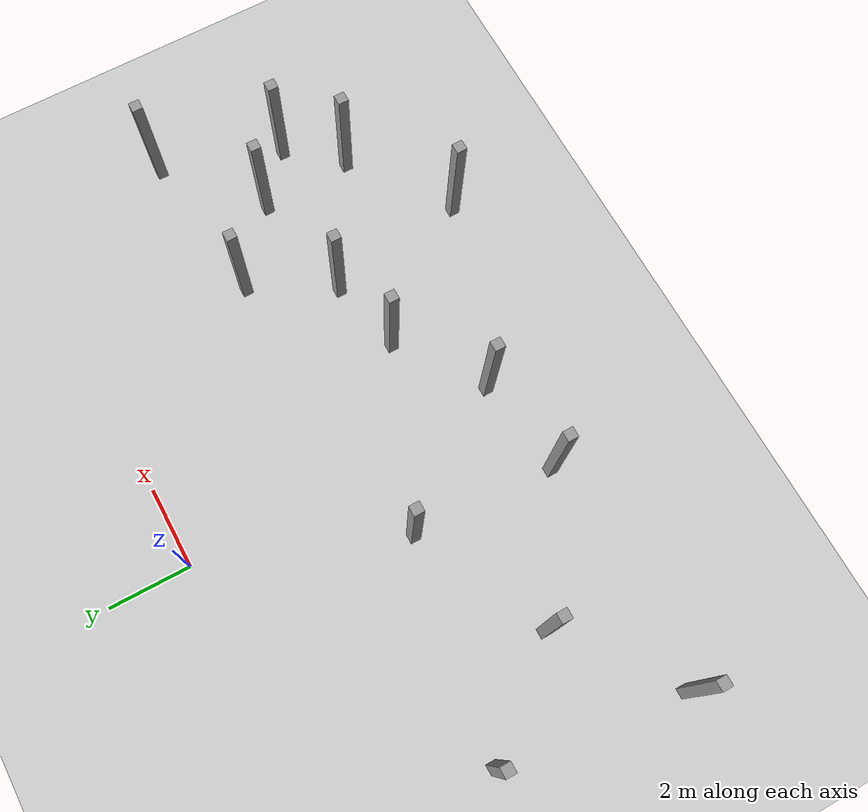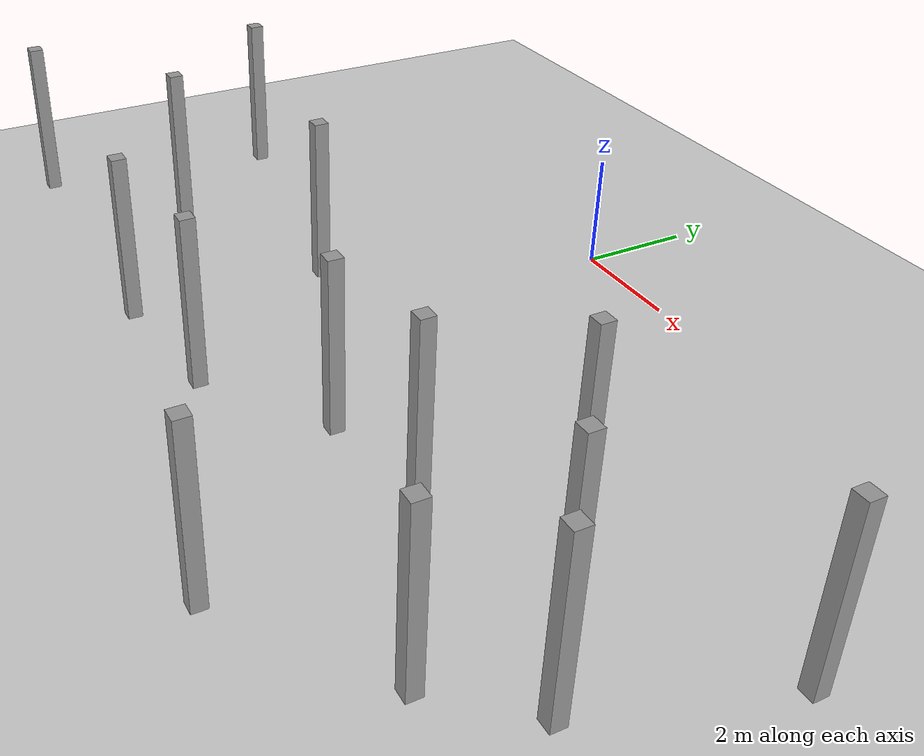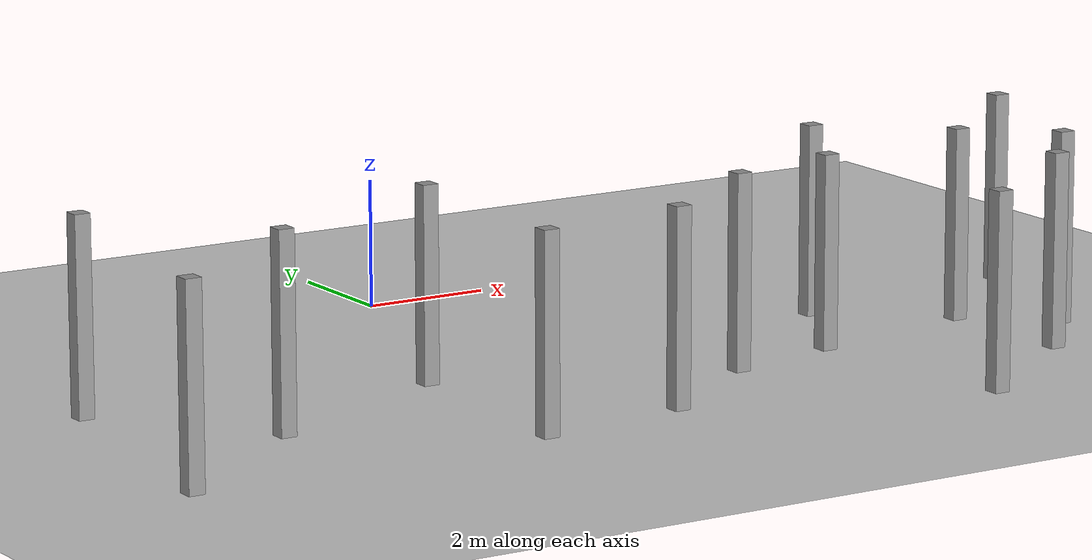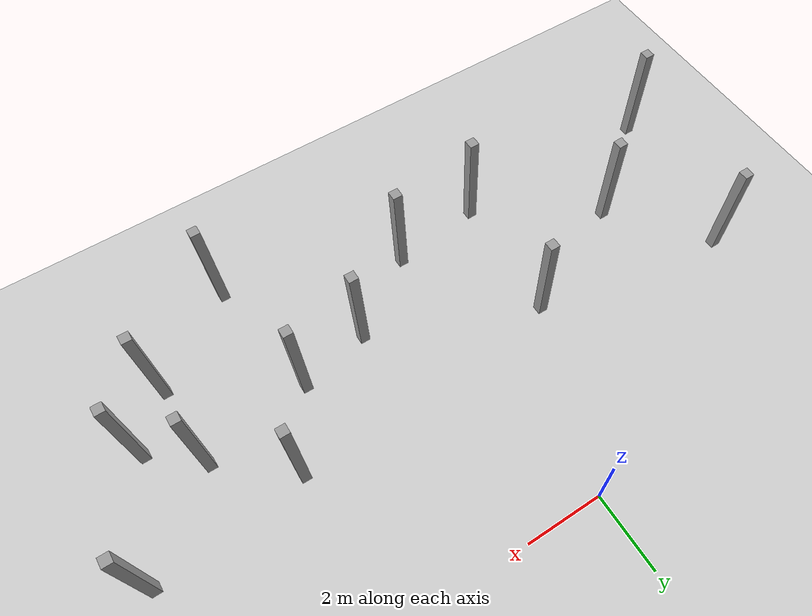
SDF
<sdf version="1.6">
 <world name="default">
  <model name="ground_plane">
   <static>1</static>
   <link name="link">
    <collision name="collision">
     <geometry><plane><normal>0 0 1</normal><size>100 100</size></plane></geometry>
     <surface><friction><ode><mu>100</mu><mu2>50</mu2></ode></friction></surface>
    </collision>
    <visual name="visual">
     <cast_shadows>0</cast_shadows>
     <geometry><plane><normal>0 0 1</normal><size>100 100</size></plane></geometry>
     <material>
      <script><uri>file://media/materials/scripts/gazebo.material</uri><name>Gazebo/Grey</name></script>
     </material>
    </visual>
   </link>
  </model>
  <model name="box_2_0">
   <link name="link">
    <pose>0 0 1 0 -0 0</pose>
    <inertial>
     <mass>1</mass>
     <inertia><ixx>5.16667</ixx><ixy>0</ixy><ixz>0</ixz><iyy>5.16667</iyy><iyz>0</iyz><izz>5.16667</izz></inertia>
     <pose>0 0 1 0 -0 0</pose>
    </inertial>
    <visual name="ModelPreview_4::link::visual_1">
     <geometry><box><size>0.25 0.25 3</size></box></geometry>
     <material>
      <script><name>Gazebo/Grey</name><uri>file://media/materials/scripts/gazebo.material</uri></script>
      <ambient>0.3 0.3 0.3 1</ambient>
      <diffuse>0.7 0.7 0.7 1</diffuse>
      <specular>0.01 0.01 0.01 1</specular>
      <emissive>0 0 0 1</emissive>
      <shader type="vertex"><normal_map>__default__</normal_map></shader>
     </material>
    </visual>
    <visual name="visual">
     <geometry><box><size>0.25 0.25 3</size></box></geometry>
     <material>
      <script><name>Gazebo/Grey</name><uri>file://media/materials/scripts/gazebo.material</uri></script>
      <ambient>0.3 0.3 0.3 1</ambient>
      <diffuse>0.7 0.7 0.7 1</diffuse>
      <specular>0.01 0.01 0.01 1</specular>
      <emissive>0 0 0 1</emissive>
      <shader type="vertex"><normal_map>__default__</normal_map></shader>
     </material>
    </visual>
    <collision name="collision">
     <geometry><box><size>0.25 0.25 3</size></box></geometry>
     <surface>
      <friction>
       <ode><mu>1</mu><mu2>1</mu2><fdir1>0 0 0</fdir1><slip1>0</slip1><slip2>0</slip2></ode>
       <torsional>
        <coefficient>1</coefficient>
        <patch_radius>0</patch_radius>
        <surface_radius>0</surface_radius>
        <use_patch_radius>1</use_patch_radius>
        <ode><slip>0</slip></ode>
       </torsional>
      </friction>
      <bounce><restitution_coefficient>0</restitution_coefficient><threshold>1e+06</threshold></bounce>
      <contact>
       <collide_without_contact>0</collide_without_contact>
       <collide_without_contact_bitmask>1</collide_without_contact_bitmask>
       <collide_bitmask>1</collide_bitmask>
       <ode>
        <soft_cfm>0</soft_cfm>
        <soft_erp>0.2</soft_erp>
        <kp>1e+13</kp>
        <kd>1</kd>
        <max_vel>0.01</max_vel>
        <min_depth>0</min_depth>
       </ode>
       <bullet>
        <split_impulse>1</split_impulse>
        <split_impulse_penetration_threshold>-0.01</split_impulse_penetration_threshold>
        <soft_cfm>0</soft_cfm>
        <soft_erp>0.2</soft_erp>
        <kp>1e+13</kp>
        <kd>1</kd>
       </bullet>
      </contact>
     </surface>
    </collision>
   </link>
   <static>0</static>
   <pose>-1.80227 -4.75191 0.49912 0 0 -0.000127</pose>
  </model>
  <model name="box_2_1">
   <link name="link">
    <pose>0 0 1 0 -0 0</pose>
    <inertial>
     <mass>1</mass>
     <inertia><ixx>5.16667</ixx><ixy>0</ixy><ixz>0</ixz><iyy>5.16667</iyy><iyz>0</iyz><izz>5.16667</izz></inertia>
     <pose>0 0 1 0 -0 0</pose>
    </inertial>
    <visual name="ModelPreview_4::link::visual_1">
     <geometry><box><size>0.25 0.25 3</size></box></geometry>
     <material>
      <script><name>Gazebo/Grey</name><uri>file://media/materials/scripts/gazebo.material</uri></script>
      <ambient>0.3 0.3 0.3 1</ambient>
      <diffuse>0.7 0.7 0.7 1</diffuse>
      <specular>0.01 0.01 0.01 1</specular>
      <emissive>0 0 0 1</emissive>
      <shader type="vertex"><normal_map>__default__</normal_map></shader>
     </material>
    </visual>
    <visual name="visual">
     <geometry><box><size>0.25 0.25 3</size></box></geometry>
     <material>
      <script><name>Gazebo/Grey</name><uri>file://media/materials/scripts/gazebo.material</uri></script>
      <ambient>0.3 0.3 0.3 1</ambient>
      <diffuse>0.7 0.7 0.7 1</diffuse>
      <specular>0.01 0.01 0.01 1</specular>
      <emissive>0 0 0 1</emissive>
      <shader type="vertex"><normal_map>__default__</normal_map></shader>
     </material>
    </visual>
    <collision name="collision">
     <geometry><box><size>0.25 0.25 3</size></box></geometry>
     <surface>
      <friction>
       <ode><mu>1</mu><mu2>1</mu2><fdir1>0 0 0</fdir1><slip1>0</slip1><slip2>0</slip2></ode>
       <torsional>
        <coefficient>1</coefficient>
        <patch_radius>0</patch_radius>
        <surface_radius>0</surface_radius>
        <use_patch_radius>1</use_patch_radius>
        <ode><slip>0</slip></ode>
       </torsional>
      </friction>
      <bounce><restitution_coefficient>0</restitution_coefficient><threshold>1e+06</threshold></bounce>
      <contact>
       <collide_without_contact>0</collide_without_contact>
       <collide_without_contact_bitmask>1</collide_without_contact_bitmask>
       <collide_bitmask>1</collide_bitmask>
       <ode>
        <soft_cfm>0</soft_cfm>
        <soft_erp>0.2</soft_erp>
        <kp>1e+13</kp>
        <kd>1</kd>
        <max_vel>0.01</max_vel>
        <min_depth>0</min_depth>
       </ode>
       <bullet>
        <split_impulse>1</split_impulse>
        <split_impulse_penetration_threshold>-0.01</split_impulse_penetration_threshold>
        <soft_cfm>0</soft_cfm>
        <soft_erp>0.2</soft_erp>
        <kp>1e+13</kp>
        <kd>1</kd>
       </bullet>
      </contact>
     </surface>
    </collision>
   </link>
   <static>0</static>
   <pose>4.35884 -6.08967 0.49912 0 0 -0.000185</pose>
  </model>
  <model name="box_2_2">
   <link name="link">
    <pose>0 0 1 0 -0 0</pose>
    <inertial>
     <mass>1</mass>
     <inertia><ixx>5.16667</ixx><ixy>0</ixy><ixz>0</ixz><iyy>5.16667</iyy><iyz>0</iyz><izz>5.16667</izz></inertia>
     <pose>0 0 1 0 -0 0</pose>
    </inertial>
    <visual name="ModelPreview_4::link::visual_1">
     <geometry><box><size>0.25 0.25 3</size></box></geometry>
     <material>
      <script><name>Gazebo/Grey</name><uri>file://media/materials/scripts/gazebo.material</uri></script>
      <ambient>0.3 0.3 0.3 1</ambient>
      <diffuse>0.7 0.7 0.7 1</diffuse>
      <specular>0.01 0.01 0.01 1</specular>
      <emissive>0 0 0 1</emissive>
      <shader type="vertex"><normal_map>__default__</normal_map></shader>
     </material>
    </visual>
    <visual name="visual">
     <geometry><box><size>0.25 0.25 3</size></box></geometry>
     <material>
      <script><name>Gazebo/Grey</name><uri>file://media/materials/scripts/gazebo.material</uri></script>
      <ambient>0.3 0.3 0.3 1</ambient>
      <diffuse>0.7 0.7 0.7 1</diffuse>
      <specular>0.01 0.01 0.01 1</specular>
      <emissive>0 0 0 1</emissive>
      <shader type="vertex"><normal_map>__default__</normal_map></shader>
     </material>
    </visual>
    <collision name="collision">
     <geometry><box><size>0.25 0.25 3</size></box></geometry>
     <surface>
      <friction>
       <ode><mu>1</mu><mu2>1</mu2><fdir1>0 0 0</fdir1><slip1>0</slip1><slip2>0</slip2></ode>
       <torsional>
        <coefficient>1</coefficient>
        <patch_radius>0</patch_radius>
        <surface_radius>0</surface_radius>
        <use_patch_radius>1</use_patch_radius>
        <ode><slip>0</slip></ode>
       </torsional>
      </friction>
      <bounce><restitution_coefficient>0</restitution_coefficient><threshold>1e+06</threshold></bounce>
      <contact>
       <collide_without_contact>0</collide_without_contact>
       <collide_without_contact_bitmask>1</collide_without_contact_bitmask>
       <collide_bitmask>1</collide_bitmask>
       <ode>
        <soft_cfm>0</soft_cfm>
        <soft_erp>0.2</soft_erp>
        <kp>1e+13</kp>
        <kd>1</kd>
        <max_vel>0.01</max_vel>
        <min_depth>0</min_depth>
       </ode>
       <bullet>
        <split_impulse>1</split_impulse>
        <split_impulse_penetration_threshold>-0.01</split_impulse_penetration_threshold>
        <soft_cfm>0</soft_cfm>
        <soft_erp>0.2</soft_erp>
        <kp>1e+13</kp>
        <kd>1</kd>
       </bullet>
      </contact>
     </surface>
    </collision>
   </link>
   <static>0</static>
   <pose>7.18467 -5.54174 0.49912 0 0 -0.000153</pose>
  </model>
  <model name="box_2_3">
   <link name="link">
    <pose>0 0 1 0 -0 0</pose>
    <inertial>
     <mass>1</mass>
     <inertia><ixx>5.16667</ixx><ixy>0</ixy><ixz>0</ixz><iyy>5.16667</iyy><iyz>0</iyz><izz>5.16667</izz></inertia>
     <pose>0 0 1 0 -0 0</pose>
    </inertial>
    <visual name="ModelPreview_4::link::visual_1">
     <geometry><box><size>0.25 0.25 3</size></box></geometry>
     <material>
      <script><name>Gazebo/Grey</name><uri>file://media/materials/scripts/gazebo.material</uri></script>
      <ambient>0.3 0.3 0.3 1</ambient>
      <diffuse>0.7 0.7 0.7 1</diffuse>
      <specular>0.01 0.01 0.01 1</specular>
      <emissive>0 0 0 1</emissive>
      <shader type="vertex"><normal_map>__default__</normal_map></shader>
     </material>
    </visual>
    <visual name="visual">
     <geometry><box><size>0.25 0.25 3</size></box></geometry>
     <material>
      <script><name>Gazebo/Grey</name><uri>file://media/materials/scripts/gazebo.material</uri></script>
      <ambient>0.3 0.3 0.3 1</ambient>
      <diffuse>0.7 0.7 0.7 1</diffuse>
      <specular>0.01 0.01 0.01 1</specular>
      <emissive>0 0 0 1</emissive>
      <shader type="vertex"><normal_map>__default__</normal_map></shader>
     </material>
    </visual>
    <collision name="collision">
     <geometry><box><size>0.25 0.25 3</size></box></geometry>
     <surface>
      <friction>
       <ode><mu>1</mu><mu2>1</mu2><fdir1>0 0 0</fdir1><slip1>0</slip1><slip2>0</slip2></ode>
       <torsional>
        <coefficient>1</coefficient>
        <patch_radius>0</patch_radius>
        <surface_radius>0</surface_radius>
        <use_patch_radius>1</use_patch_radius>
        <ode><slip>0</slip></ode>
       </torsional>
      </friction>
      <bounce><restitution_coefficient>0</restitution_coefficient><threshold>1e+06</threshold></bounce>
      <contact>
       <collide_without_contact>0</collide_without_contact>
       <collide_without_contact_bitmask>1</collide_without_contact_bitmask>
       <collide_bitmask>1</collide_bitmask>
       <ode>
        <soft_cfm>0</soft_cfm>
        <soft_erp>0.2</soft_erp>
        <kp>1e+13</kp>
        <kd>1</kd>
        <max_vel>0.01</max_vel>
        <min_depth>0</min_depth>
       </ode>
       <bullet>
        <split_impulse>1</split_impulse>
        <split_impulse_penetration_threshold>-0.01</split_impulse_penetration_threshold>
        <soft_cfm>0</soft_cfm>
        <soft_erp>0.2</soft_erp>
        <kp>1e+13</kp>
        <kd>1</kd>
       </bullet>
      </contact>
     </surface>
    </collision>
   </link>
   <static>0</static>
   <pose>0.476728 -7.95519 0.49912 0 0 -0.000167</pose>
  </model>
  <model name="box_2_4">
   <link name="link">
    <pose>0 0 1 0 -0 0</pose>
    <inertial>
     <mass>1</mass>
     <inertia><ixx>5.16667</ixx><ixy>0</ixy><ixz>0</ixz><iyy>5.16667</iyy><iyz>0</iyz><izz>5.16667</izz></inertia>
     <pose>0 0 1 0 -0 0</pose>
    </inertial>
    <visual name="ModelPreview_4::link::visual_1">
     <geometry><box><size>0.25 0.25 3</size></box></geometry>
     <material>
      <script><name>Gazebo/Grey</name><uri>file://media/materials/scripts/gazebo.material</uri></script>
      <ambient>0.3 0.3 0.3 1</ambient>
      <diffuse>0.7 0.7 0.7 1</diffuse>
      <specular>0.01 0.01 0.01 1</specular>
      <emissive>0 0 0 1</emissive>
      <shader type="vertex"><normal_map>__default__</normal_map></shader>
     </material>
    </visual>
    <visual name="visual">
     <geometry><box><size>0.25 0.25 3</size></box></geometry>
     <material>
      <script><name>Gazebo/Grey</name><uri>file://media/materials/scripts/gazebo.material</uri></script>
      <ambient>0.3 0.3 0.3 1</ambient>
      <diffuse>0.7 0.7 0.7 1</diffuse>
      <specular>0.01 0.01 0.01 1</specular>
      <emissive>0 0 0 1</emissive>
      <shader type="vertex"><normal_map>__default__</normal_map></shader>
     </material>
    </visual>
    <collision name="collision">
     <geometry><box><size>0.25 0.25 3</size></box></geometry>
     <surface>
      <friction>
       <ode><mu>1</mu><mu2>1</mu2><fdir1>0 0 0</fdir1><slip1>0</slip1><slip2>0</slip2></ode>
       <torsional>
        <coefficient>1</coefficient>
        <patch_radius>0</patch_radius>
        <surface_radius>0</surface_radius>
        <use_patch_radius>1</use_patch_radius>
        <ode><slip>0</slip></ode>
       </torsional>
      </friction>
      <bounce><restitution_coefficient>0</restitution_coefficient><threshold>1e+06</threshold></bounce>
      <contact>
       <collide_without_contact>0</collide_without_contact>
       <collide_without_contact_bitmask>1</collide_without_contact_bitmask>
       <collide_bitmask>1</collide_bitmask>
       <ode>
        <soft_cfm>0</soft_cfm>
        <soft_erp>0.2</soft_erp>
        <kp>1e+13</kp>
        <kd>1</kd>
        <max_vel>0.01</max_vel>
        <min_depth>0</min_depth>
       </ode>
       <bullet>
        <split_impulse>1</split_impulse>
        <split_impulse_penetration_threshold>-0.01</split_impulse_penetration_threshold>
        <soft_cfm>0</soft_cfm>
        <soft_erp>0.2</soft_erp>
        <kp>1e+13</kp>
        <kd>1</kd>
       </bullet>
      </contact>
     </surface>
    </collision>
   </link>
   <static>0</static>
   <pose>7.33014 -7.82542 0.49912 0 0 -0.00013</pose>
  </model>
  <model name="box_2_8">
   <link name="link">
    <pose>0 0 1 0 -0 0</pose>
    <inertial>
     <mass>1</mass>
     <inertia><ixx>5.16667</ixx><ixy>0</ixy><ixz>0</ixz><iyy>5.16667</iyy><iyz>0</iyz><izz>5.16667</izz></inertia>
     <pose>0 0 1 0 -0 0</pose>
    </inertial>
    <visual name="ModelPreview_4::link::visual_1">
     <geometry><box><size>0.25 0.25 3</size></box></geometry>
     <material>
      <script><name>Gazebo/Grey</name><uri>file://media/materials/scripts/gazebo.material</uri></script>
      <ambient>0.3 0.3 0.3 1</ambient>
      <diffuse>0.7 0.7 0.7 1</diffuse>
      <specular>0.01 0.01 0.01 1</specular>
      <emissive>0 0 0 1</emissive>
      <shader type="vertex"><normal_map>__default__</normal_map></shader>
     </material>
    </visual>
    <visual name="visual">
     <geometry><box><size>0.25 0.25 3</size></box></geometry>
     <material>
      <script><name>Gazebo/Grey</name><uri>file://media/materials/scripts/gazebo.material</uri></script>
      <ambient>0.3 0.3 0.3 1</ambient>
      <diffuse>0.7 0.7 0.7 1</diffuse>
      <specular>0.01 0.01 0.01 1</specular>
      <emissive>0 0 0 1</emissive>
      <shader type="vertex"><normal_map>__default__</normal_map></shader>
     </material>
    </visual>
    <collision name="collision">
     <geometry><box><size>0.25 0.25 3</size></box></geometry>
     <surface>
      <friction>
       <ode><mu>1</mu><mu2>1</mu2><fdir1>0 0 0</fdir1><slip1>0</slip1><slip2>0</slip2></ode>
       <torsional>
        <coefficient>1</coefficient>
        <patch_radius>0</patch_radius>
        <surface_radius>0</surface_radius>
        <use_patch_radius>1</use_patch_radius>
        <ode><slip>0</slip></ode>
       </torsional>
      </friction>
      <bounce><restitution_coefficient>0</restitution_coefficient><threshold>1e+06</threshold></bounce>
      <contact>
       <collide_without_contact>0</collide_without_contact>
       <collide_without_contact_bitmask>1</collide_without_contact_bitmask>
       <collide_bitmask>1</collide_bitmask>
       <ode>
        <soft_cfm>0</soft_cfm>
        <soft_erp>0.2</soft_erp>
        <kp>1e+13</kp>
        <kd>1</kd>
        <max_vel>0.01</max_vel>
        <min_depth>0</min_depth>
       </ode>
       <bullet>
        <split_impulse>1</split_impulse>
        <split_impulse_penetration_threshold>-0.01</split_impulse_penetration_threshold>
        <soft_cfm>0</soft_cfm>
        <soft_erp>0.2</soft_erp>
        <kp>1e+13</kp>
        <kd>1</kd>
       </bullet>
      </contact>
     </surface>
    </collision>
   </link>
   <static>0</static>
   <pose>2.49951 -6.51199 0.49912 0 0 -0.000133</pose>
  </model>
  <model name="box_2_9">
   <link name="link">
    <pose>0 0 1 0 -0 0</pose>
    <inertial>
     <mass>1</mass>
     <inertia><ixx>5.16667</ixx><ixy>0</ixy><ixz>0</ixz><iyy>5.16667</iyy><iyz>0</iyz><izz>5.16667</izz></inertia>
     <pose>0 0 1 0 -0 0</pose>
    </inertial>
    <visual name="ModelPreview_4::link::visual_1">
     <geometry><box><size>0.25 0.25 3</size></box></geometry>
     <material>
      <script><name>Gazebo/Grey</name><uri>file://media/materials/scripts/gazebo.material</uri></script>
      <ambient>0.3 0.3 0.3 1</ambient>
      <diffuse>0.7 0.7 0.7 1</diffuse>
      <specular>0.01 0.01 0.01 1</specular>
      <emissive>0 0 0 1</emissive>
      <shader type="vertex"><normal_map>__default__</normal_map></shader>
     </material>
    </visual>
    <visual name="visual">
     <geometry><box><size>0.25 0.25 3</size></box></geometry>
     <material>
      <script><name>Gazebo/Grey</name><uri>file://media/materials/scripts/gazebo.material</uri></script>
      <ambient>0.3 0.3 0.3 1</ambient>
      <diffuse>0.7 0.7 0.7 1</diffuse>
      <specular>0.01 0.01 0.01 1</specular>
      <emissive>0 0 0 1</emissive>
      <shader type="vertex"><normal_map>__default__</normal_map></shader>
     </material>
    </visual>
    <collision name="collision">
     <geometry><box><size>0.25 0.25 3</size></box></geometry>
     <surface>
      <friction>
       <ode><mu>1</mu><mu2>1</mu2><fdir1>0 0 0</fdir1><slip1>0</slip1><slip2>0</slip2></ode>
       <torsional>
        <coefficient>1</coefficient>
        <patch_radius>0</patch_radius>
        <surface_radius>0</surface_radius>
        <use_patch_radius>1</use_patch_radius>
        <ode><slip>0</slip></ode>
       </torsional>
      </friction>
      <bounce><restitution_coefficient>0</restitution_coefficient><threshold>1e+06</threshold></bounce>
      <contact>
       <collide_without_contact>0</collide_without_contact>
       <collide_without_contact_bitmask>1</collide_without_contact_bitmask>
       <collide_bitmask>1</collide_bitmask>
       <ode>
        <soft_cfm>0</soft_cfm>
        <soft_erp>0.2</soft_erp>
        <kp>1e+13</kp>
        <kd>1</kd>
        <max_vel>0.01</max_vel>
        <min_depth>0</min_depth>
       </ode>
       <bullet>
        <split_impulse>1</split_impulse>
        <split_impulse_penetration_threshold>-0.01</split_impulse_penetration_threshold>
        <soft_cfm>0</soft_cfm>
        <soft_erp>0.2</soft_erp>
        <kp>1e+13</kp>
        <kd>1</kd>
       </bullet>
      </contact>
     </surface>
    </collision>
   </link>
   <static>0</static>
   <pose>-1.93996 -8.27565 0.49912 0 0 -0.000136</pose>
  </model>
  <model name="box_2_10">
   <link name="link">
    <pose>0 0 1 0 -0 0</pose>
    <inertial>
     <mass>1</mass>
     <inertia><ixx>5.16667</ixx><ixy>0</ixy><ixz>0</ixz><iyy>5.16667</iyy><iyz>0</iyz><izz>5.16667</izz></inertia>
     <pose>0 0 1 0 -0 0</pose>
    </inertial>
    <visual name="ModelPreview_4::link::visual_1">
     <geometry><box><size>0.25 0.25 3</size></box></geometry>
     <material>
      <script><name>Gazebo/Grey</name><uri>file://media/materials/scripts/gazebo.material</uri></script>
      <ambient>0.3 0.3 0.3 1</ambient>
      <diffuse>0.7 0.7 0.7 1</diffuse>
      <specular>0.01 0.01 0.01 1</specular>
      <emissive>0 0 0 1</emissive>
      <shader type="vertex"><normal_map>__default__</normal_map></shader>
     </material>
    </visual>
    <visual name="visual">
     <geometry><box><size>0.25 0.25 3</size></box></geometry>
     <material>
      <script><name>Gazebo/Grey</name><uri>file://media/materials/scripts/gazebo.material</uri></script>
      <ambient>0.3 0.3 0.3 1</ambient>
      <diffuse>0.7 0.7 0.7 1</diffuse>
      <specular>0.01 0.01 0.01 1</specular>
      <emissive>0 0 0 1</emissive>
      <shader type="vertex"><normal_map>__default__</normal_map></shader>
     </material>
    </visual>
    <collision name="collision">
     <geometry><box><size>0.25 0.25 3</size></box></geometry>
     <surface>
      <friction>
       <ode><mu>1</mu><mu2>1</mu2><fdir1>0 0 0</fdir1><slip1>0</slip1><slip2>0</slip2></ode>
       <torsional>
        <coefficient>1</coefficient>
        <patch_radius>0</patch_radius>
        <surface_radius>0</surface_radius>
        <use_patch_radius>1</use_patch_radius>
        <ode><slip>0</slip></ode>
       </torsional>
      </friction>
      <bounce><restitution_coefficient>0</restitution_coefficient><threshold>1e+06</threshold></bounce>
      <contact>
       <collide_without_contact>0</collide_without_contact>
       <collide_without_contact_bitmask>1</collide_without_contact_bitmask>
       <collide_bitmask>1</collide_bitmask>
       <ode>
        <soft_cfm>0</soft_cfm>
        <soft_erp>0.2</soft_erp>
        <kp>1e+13</kp>
        <kd>1</kd>
        <max_vel>0.01</max_vel>
        <min_depth>0</min_depth>
       </ode>
       <bullet>
        <split_impulse>1</split_impulse>
        <split_impulse_penetration_threshold>-0.01</split_impulse_penetration_threshold>
        <soft_cfm>0</soft_cfm>
        <soft_erp>0.2</soft_erp>
        <kp>1e+13</kp>
        <kd>1</kd>
       </bullet>
      </contact>
     </surface>
    </collision>
   </link>
   <static>0</static>
   <pose>4.96375 -9.57304 0.49912 0 0 -0.000122</pose>
  </model>
  <model name="box_2_11">
   <link name="link">
    <pose>0 0 1 0 -0 0</pose>
    <inertial>
     <mass>1</mass>
     <inertia><ixx>5.16667</ixx><ixy>0</ixy><ixz>0</ixz><iyy>5.16667</iyy><iyz>0</iyz><izz>5.16667</izz></inertia>
     <pose>0 0 1 0 -0 0</pose>
    </inertial>
    <visual name="ModelPreview_4::link::visual_1">
     <geometry><box><size>0.25 0.25 3</size></box></geometry>
     <material>
      <script><name>Gazebo/Grey</name><uri>file://media/materials/scripts/gazebo.material</uri></script>
      <ambient>0.3 0.3 0.3 1</ambient>
      <diffuse>0.7 0.7 0.7 1</diffuse>
      <specular>0.01 0.01 0.01 1</specular>
      <emissive>0 0 0 1</emissive>
      <shader type="vertex"><normal_map>__default__</normal_map></shader>
     </material>
    </visual>
    <visual name="visual">
     <geometry><box><size>0.25 0.25 3</size></box></geometry>
     <material>
      <script><name>Gazebo/Grey</name><uri>file://media/materials/scripts/gazebo.material</uri></script>
      <ambient>0.3 0.3 0.3 1</ambient>
      <diffuse>0.7 0.7 0.7 1</diffuse>
      <specular>0.01 0.01 0.01 1</specular>
      <emissive>0 0 0 1</emissive>
      <shader type="vertex"><normal_map>__default__</normal_map></shader>
     </material>
    </visual>
    <collision name="collision">
     <geometry><box><size>0.25 0.25 3</size></box></geometry>
     <surface>
      <friction>
       <ode><mu>1</mu><mu2>1</mu2><fdir1>0 0 0</fdir1><slip1>0</slip1><slip2>0</slip2></ode>
       <torsional>
        <coefficient>1</coefficient>
        <patch_radius>0</patch_radius>
        <surface_radius>0</surface_radius>
        <use_patch_radius>1</use_patch_radius>
        <ode><slip>0</slip></ode>
       </torsional>
      </friction>
      <bounce><restitution_coefficient>0</restitution_coefficient><threshold>1e+06</threshold></bounce>
      <contact>
       <collide_without_contact>0</collide_without_contact>
       <collide_without_contact_bitmask>1</collide_without_contact_bitmask>
       <collide_bitmask>1</collide_bitmask>
       <ode>
        <soft_cfm>0</soft_cfm>
        <soft_erp>0.2</soft_erp>
        <kp>1e+13</kp>
        <kd>1</kd>
        <max_vel>0.01</max_vel>
        <min_depth>0</min_depth>
       </ode>
       <bullet>
        <split_impulse>1</split_impulse>
        <split_impulse_penetration_threshold>-0.01</split_impulse_penetration_threshold>
        <soft_cfm>0</soft_cfm>
        <soft_erp>0.2</soft_erp>
        <kp>1e+13</kp>
        <kd>1</kd>
       </bullet>
      </contact>
     </surface>
    </collision>
   </link>
   <static>0</static>
   <pose>-6.97607 -3.85239 0.49912 0 0 -0.000115</pose>
  </model>
  <model name="box_2_16">
   <link name="link">
    <pose>0 0 1 0 -0 0</pose>
    <inertial>
     <mass>1</mass>
     <inertia><ixx>5.16667</ixx><ixy>0</ixy><ixz>0</ixz><iyy>5.16667</iyy><iyz>0</iyz><izz>5.16667</izz></inertia>
     <pose>0 0 1 0 -0 0</pose>
    </inertial>
    <visual name="ModelPreview_4::link::visual_1">
     <geometry><box><size>0.25 0.25 3</size></box></geometry>
     <material>
      <script><name>Gazebo/Grey</name><uri>file://media/materials/scripts/gazebo.material</uri></script>
      <ambient>0.3 0.3 0.3 1</ambient>
      <diffuse>0.7 0.7 0.7 1</diffuse>
      <specular>0.01 0.01 0.01 1</specular>
      <emissive>0 0 0 1</emissive>
      <shader type="vertex"><normal_map>__default__</normal_map></shader>
     </material>
    </visual>
    <visual name="visual">
     <geometry><box><size>0.25 0.25 3</size></box></geometry>
     <material>
      <script><name>Gazebo/Grey</name><uri>file://media/materials/scripts/gazebo.material</uri></script>
      <ambient>0.3 0.3 0.3 1</ambient>
      <diffuse>0.7 0.7 0.7 1</diffuse>
      <specular>0.01 0.01 0.01 1</specular>
      <emissive>0 0 0 1</emissive>
      <shader type="vertex"><normal_map>__default__</normal_map></shader>
     </material>
    </visual>
    <collision name="collision">
     <geometry><box><size>0.25 0.25 3</size></box></geometry>
     <surface>
      <friction>
       <ode><mu>1</mu><mu2>1</mu2><fdir1>0 0 0</fdir1><slip1>0</slip1><slip2>0</slip2></ode>
       <torsional>
        <coefficient>1</coefficient>
        <patch_radius>0</patch_radius>
        <surface_radius>0</surface_radius>
        <use_patch_radius>1</use_patch_radius>
        <ode><slip>0</slip></ode>
       </torsional>
      </friction>
      <bounce><restitution_coefficient>0</restitution_coefficient><threshold>1e+06</threshold></bounce>
      <contact>
       <collide_without_contact>0</collide_without_contact>
       <collide_without_contact_bitmask>1</collide_without_contact_bitmask>
       <collide_bitmask>1</collide_bitmask>
       <ode>
        <soft_cfm>0</soft_cfm>
        <soft_erp>0.2</soft_erp>
        <kp>1e+13</kp>
        <kd>1</kd>
        <max_vel>0.01</max_vel>
        <min_depth>0</min_depth>
       </ode>
       <bullet>
        <split_impulse>1</split_impulse>
        <split_impulse_penetration_threshold>-0.01</split_impulse_penetration_threshold>
        <soft_cfm>0</soft_cfm>
        <soft_erp>0.2</soft_erp>
        <kp>1e+13</kp>
        <kd>1</kd>
       </bullet>
      </contact>
     </surface>
    </collision>
   </link>
   <static>0</static>
   <pose>8.40152 -6.58043 0.49912 0 0 -0.00017</pose>
  </model>
  <model name="box_2_17">
   <link name="link">
    <pose>0 0 1 0 -0 0</pose>
    <inertial>
     <mass>1</mass>
     <inertia><ixx>5.16667</ixx><ixy>0</ixy><ixz>0</ixz><iyy>5.16667</iyy><iyz>0</iyz><izz>5.16667</izz></inertia>
     <pose>0 0 1 0 -0 0</pose>
    </inertial>
    <visual name="ModelPreview_4::link::visual_1">
     <geometry><box><size>0.25 0.25 3</size></box></geometry>
     <material>
      <script><name>Gazebo/Grey</name><uri>file://media/materials/scripts/gazebo.material</uri></script>
      <ambient>0.3 0.3 0.3 1</ambient>
      <diffuse>0.7 0.7 0.7 1</diffuse>
      <specular>0.01 0.01 0.01 1</specular>
      <emissive>0 0 0 1</emissive>
      <shader type="vertex"><normal_map>__default__</normal_map></shader>
     </material>
    </visual>
    <visual name="visual">
     <geometry><box><size>0.25 0.25 3</size></box></geometry>
     <material>
      <script><name>Gazebo/Grey</name><uri>file://media/materials/scripts/gazebo.material</uri></script>
      <ambient>0.3 0.3 0.3 1</ambient>
      <diffuse>0.7 0.7 0.7 1</diffuse>
      <specular>0.01 0.01 0.01 1</specular>
      <emissive>0 0 0 1</emissive>
      <shader type="vertex"><normal_map>__default__</normal_map></shader>
     </material>
    </visual>
    <collision name="collision">
     <geometry><box><size>0.25 0.25 3</size></box></geometry>
     <surface>
      <friction>
       <ode><mu>1</mu><mu2>1</mu2><fdir1>0 0 0</fdir1><slip1>0</slip1><slip2>0</slip2></ode>
       <torsional>
        <coefficient>1</coefficient>
        <patch_radius>0</patch_radius>
        <surface_radius>0</surface_radius>
        <use_patch_radius>1</use_patch_radius>
        <ode><slip>0</slip></ode>
       </torsional>
      </friction>
      <bounce><restitution_coefficient>0</restitution_coefficient><threshold>1e+06</threshold></bounce>
      <contact>
       <collide_without_contact>0</collide_without_contact>
       <collide_without_contact_bitmask>1</collide_without_contact_bitmask>
       <collide_bitmask>1</collide_bitmask>
       <ode>
        <soft_cfm>0</soft_cfm>
        <soft_erp>0.2</soft_erp>
        <kp>1e+13</kp>
        <kd>1</kd>
        <max_vel>0.01</max_vel>
        <min_depth>0</min_depth>
       </ode>
       <bullet>
        <split_impulse>1</split_impulse>
        <split_impulse_penetration_threshold>-0.01</split_impulse_penetration_threshold>
        <soft_cfm>0</soft_cfm>
        <soft_erp>0.2</soft_erp>
        <kp>1e+13</kp>
        <kd>1</kd>
       </bullet>
      </contact>
     </surface>
    </collision>
   </link>
   <static>0</static>
   <pose>9.36831 -3.63843 0.49912 0 0 -0.000165</pose>
  </model>
  <model name="box_2_25">
   <link name="link">
    <pose>0 0 1 0 -0 0</pose>
    <inertial>
     <mass>1</mass>
     <inertia><ixx>5.16667</ixx><ixy>0</ixy><ixz>0</ixz><iyy>5.16667</iyy><iyz>0</iyz><izz>5.16667</izz></inertia>
     <pose>0 0 1 0 -0 0</pose>
    </inertial>
    <visual name="ModelPreview_4::link::visual_1">
     <geometry><box><size>0.25 0.25 3</size></box></geometry>
     <material>
      <script><name>Gazebo/Grey</name><uri>file://media/materials/scripts/gazebo.material</uri></script>
      <ambient>0.3 0.3 0.3 1</ambient>
      <diffuse>0.7 0.7 0.7 1</diffuse>
      <specular>0.01 0.01 0.01 1</specular>
      <emissive>0 0 0 1</emissive>
      <shader type="vertex"><normal_map>__default__</normal_map></shader>
     </material>
    </visual>
    <visual name="visual">
     <geometry><box><size>0.25 0.25 3</size></box></geometry>
     <material>
      <script><name>Gazebo/Grey</name><uri>file://media/materials/scripts/gazebo.material</uri></script>
      <ambient>0.3 0.3 0.3 1</ambient>
      <diffuse>0.7 0.7 0.7 1</diffuse>
      <specular>0.01 0.01 0.01 1</specular>
      <emissive>0 0 0 1</emissive>
      <shader type="vertex"><normal_map>__default__</normal_map></shader>
     </material>
    </visual>
    <collision name="collision">
     <geometry><box><size>0.25 0.25 3</size></box></geometry>
     <surface>
      <friction>
       <ode><mu>1</mu><mu2>1</mu2><fdir1>0 0 0</fdir1><slip1>0</slip1><slip2>0</slip2></ode>
       <torsional>
        <coefficient>1</coefficient>
        <patch_radius>0</patch_radius>
        <surface_radius>0</surface_radius>
        <use_patch_radius>1</use_patch_radius>
        <ode><slip>0</slip></ode>
       </torsional>
      </friction>
      <bounce><restitution_coefficient>0</restitution_coefficient><threshold>1e+06</threshold></bounce>
      <contact>
       <collide_without_contact>0</collide_without_contact>
       <collide_without_contact_bitmask>1</collide_without_contact_bitmask>
       <collide_bitmask>1</collide_bitmask>
       <ode>
        <soft_cfm>0</soft_cfm>
        <soft_erp>0.2</soft_erp>
        <kp>1e+13</kp>
        <kd>1</kd>
        <max_vel>0.01</max_vel>
        <min_depth>0</min_depth>
       </ode>
       <bullet>
        <split_impulse>1</split_impulse>
        <split_impulse_penetration_threshold>-0.01</split_impulse_penetration_threshold>
        <soft_cfm>0</soft_cfm>
        <soft_erp>0.2</soft_erp>
        <kp>1e+13</kp>
        <kd>1</kd>
       </bullet>
      </contact>
     </surface>
    </collision>
   </link>
   <static>0</static>
   <pose>-5.03189 -6.26033 0.499023 -7e-06 -0 -0.000128</pose>
  </model>
  <model name="box_2_26">
   <link name="link">
    <pose>0 0 1 0 -0 0</pose>
    <inertial>
     <mass>1</mass>
     <inertia><ixx>5.16667</ixx><ixy>0</ixy><ixz>0</ixz><iyy>5.16667</iyy><iyz>0</iyz><izz>5.16667</izz></inertia>
     <pose>0 0 1 0 -0 0</pose>
    </inertial>
    <visual name="ModelPreview_4::link::visual_1">
     <geometry><box><size>0.25 0.25 3</size></box></geometry>
     <material>
      <script><name>Gazebo/Grey</name><uri>file://media/materials/scripts/gazebo.material</uri></script>
      <ambient>0.3 0.3 0.3 1</ambient>
      <diffuse>0.7 0.7 0.7 1</diffuse>
      <specular>0.01 0.01 0.01 1</specular>
      <emissive>0 0 0 1</emissive>
      <shader type="vertex"><normal_map>__default__</normal_map></shader>
     </material>
    </visual>
    <visual name="visual">
     <geometry><box><size>0.25 0.25 3</size></box></geometry>
     <material>
      <script><name>Gazebo/Grey</name><uri>file://media/materials/scripts/gazebo.material</uri></script>
      <ambient>0.3 0.3 0.3 1</ambient>
      <diffuse>0.7 0.7 0.7 1</diffuse>
      <specular>0.01 0.01 0.01 1</specular>
      <emissive>0 0 0 1</emissive>
      <shader type="vertex"><normal_map>__default__</normal_map></shader>
     </material>
    </visual>
    <collision name="collision">
     <geometry><box><size>0.25 0.25 3</size></box></geometry>
     <surface>
      <friction>
       <ode><mu>1</mu><mu2>1</mu2><fdir1>0 0 0</fdir1><slip1>0</slip1><slip2>0</slip2></ode>
       <torsional>
        <coefficient>1</coefficient>
        <patch_radius>0</patch_radius>
        <surface_radius>0</surface_radius>
        <use_patch_radius>1</use_patch_radius>
        <ode><slip>0</slip></ode>
       </torsional>
      </friction>
      <bounce><restitution_coefficient>0</restitution_coefficient><threshold>1e+06</threshold></bounce>
      <contact>
       <collide_without_contact>0</collide_without_contact>
       <collide_without_contact_bitmask>1</collide_without_contact_bitmask>
       <collide_bitmask>1</collide_bitmask>
       <ode>
        <soft_cfm>0</soft_cfm>
        <soft_erp>0.2</soft_erp>
        <kp>1e+13</kp>
        <kd>1</kd>
        <max_vel>0.01</max_vel>
        <min_depth>0</min_depth>
       </ode>
       <bullet>
        <split_impulse>1</split_impulse>
        <split_impulse_penetration_threshold>-0.01</split_impulse_penetration_threshold>
        <soft_cfm>0</soft_cfm>
        <soft_erp>0.2</soft_erp>
        <kp>1e+13</kp>
        <kd>1</kd>
       </bullet>
      </contact>
     </surface>
    </collision>
   </link>
   <static>0</static>
   <pose>-7.58204 -8.28482 0.49912 0 0 -0.000131</pose>
  </model>
  <model name="box_2_33">
   <link name="link">
    <pose>0 0 1 0 -0 0</pose>
    <inertial>
     <mass>1</mass>
     <inertia><ixx>5.16667</ixx><ixy>0</ixy><ixz>0</ixz><iyy>5.16667</iyy><iyz>0</iyz><izz>5.16667</izz></inertia>
     <pose>0 0 1 0 -0 0</pose>
    </inertial>
    <visual name="ModelPreview_4::link::visual_1">
     <geometry><box><size>0.25 0.25 3</size></box></geometry>
     <material>
      <script><name>Gazebo/Grey</name><uri>file://media/materials/scripts/gazebo.material</uri></script>
      <ambient>0.3 0.3 0.3 1</ambient>
      <diffuse>0.7 0.7 0.7 1</diffuse>
      <specular>0.01 0.01 0.01 1</specular>
      <emissive>0 0 0 1</emissive>
      <shader type="vertex"><normal_map>__default__</normal_map></shader>
     </material>
    </visual>
    <visual name="visual">
     <geometry><box><size>0.25 0.25 3</size></box></geometry>
     <material>
      <script><name>Gazebo/Grey</name><uri>file://media/materials/scripts/gazebo.material</uri></script>
      <ambient>0.3 0.3 0.3 1</ambient>
      <diffuse>0.7 0.7 0.7 1</diffuse>
      <specular>0.01 0.01 0.01 1</specular>
      <emissive>0 0 0 1</emissive>
      <shader type="vertex"><normal_map>__default__</normal_map></shader>
     </material>
    </visual>
    <collision name="collision">
     <geometry><box><size>0.25 0.25 3</size></box></geometry>
     <surface>
      <friction>
       <ode><mu>1</mu><mu2>1</mu2><fdir1>0 0 0</fdir1><slip1>0</slip1><slip2>0</slip2></ode>
       <torsional>
        <coefficient>1</coefficient>
        <patch_radius>0</patch_radius>
        <surface_radius>0</surface_radius>
        <use_patch_radius>1</use_patch_radius>
        <ode><slip>0</slip></ode>
       </torsional>
      </friction>
      <bounce><restitution_coefficient>0</restitution_coefficient><threshold>1e+06</threshold></bounce>
      <contact>
       <collide_without_contact>0</collide_without_contact>
       <collide_without_contact_bitmask>1</collide_without_contact_bitmask>
       <collide_bitmask>1</collide_bitmask>
       <ode>
        <soft_cfm>0</soft_cfm>
        <soft_erp>0.2</soft_erp>
        <kp>1e+13</kp>
        <kd>1</kd>
        <max_vel>0.01</max_vel>
        <min_depth>0</min_depth>
       </ode>
       <bullet>
        <split_impulse>1</split_impulse>
        <split_impulse_penetration_threshold>-0.01</split_impulse_penetration_threshold>
        <soft_cfm>0</soft_cfm>
        <soft_erp>0.2</soft_erp>
        <kp>1e+13</kp>
        <kd>1</kd>
       </bullet>
      </contact>
     </surface>
    </collision>
   </link>
   <static>0</static>
   <pose>5.45303 -4.10309 0.49912 0 0 -0.000134</pose>
  </model>
 </world>
</sdf>
